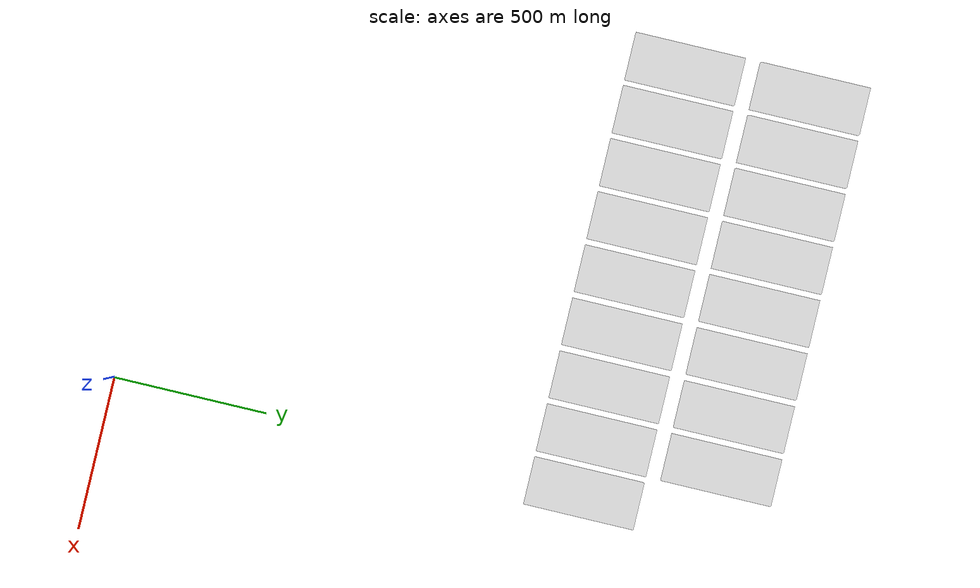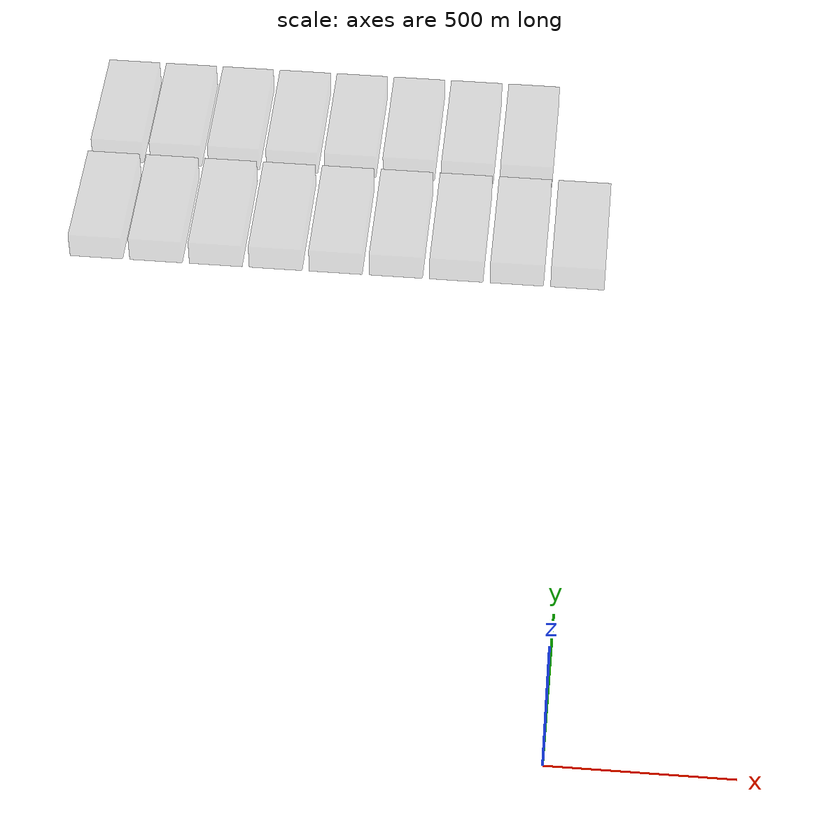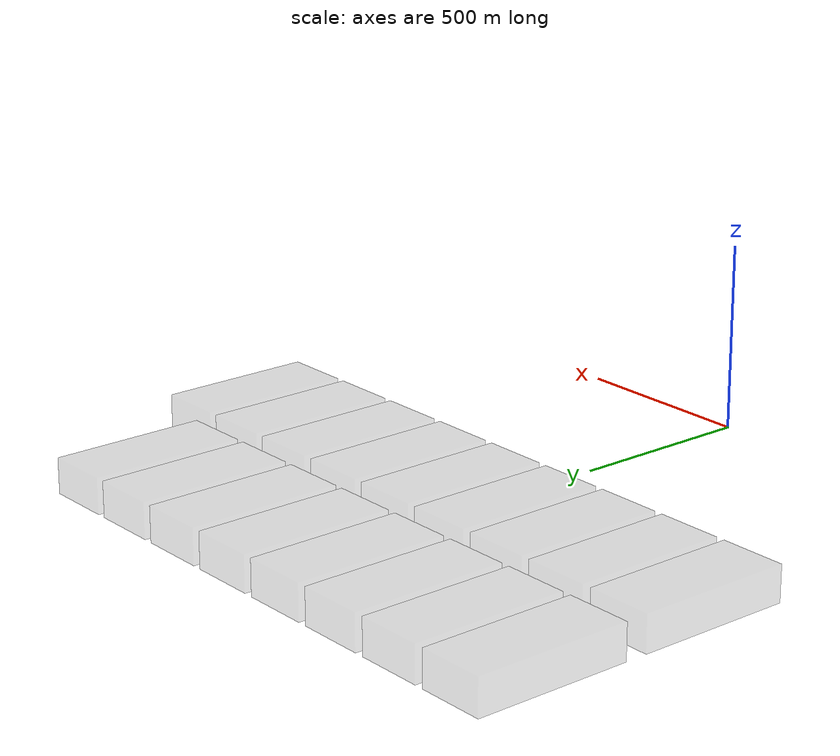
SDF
<sdf version="1.5">
 <world name="default">
  <model name="building_group1_0">
   <pose>0 1535 425 0 -0 0</pose>
   <static>1</static>
   <link name="link">
    <visual name="visual">
     <geometry><box><size>150 350 80</size></box></geometry>
     <material><ambient>0.2 0.2 0.2 0.2</ambient><diffuse>0.2 0.2 0.2 0.2</diffuse></material>
    </visual>
    <collision name="collision"><geometry><box><size>150 350 80</size></box></geometry></collision>
   </link>
  </model>
  <model name="building_group1_1">
   <pose>-170 1535 425 0 -0 0</pose>
   <static>1</static>
   <link name="link">
    <visual name="visual">
     <geometry><box><size>150 350 80</size></box></geometry>
     <material><ambient>0.2 0.2 0.2 0.2</ambient><diffuse>0.2 0.2 0.2 0.2</diffuse></material>
    </visual>
    <collision name="collision"><geometry><box><size>150 350 80</size></box></geometry></collision>
   </link>
  </model>
  <model name="building_group1_2">
   <pose>-340 1535 425 0 -0 0</pose>
   <static>1</static>
   <link name="link">
    <visual name="visual">
     <geometry><box><size>150 350 80</size></box></geometry>
     <material><ambient>0.2 0.2 0.2 0.2</ambient><diffuse>0.2 0.2 0.2 0.2</diffuse></material>
    </visual>
    <collision name="collision"><geometry><box><size>150 350 80</size></box></geometry></collision>
   </link>
  </model>
  <model name="building_group1_3">
   <pose>-510 1535 425 0 -0 0</pose>
   <static>1</static>
   <link name="link">
    <visual name="visual">
     <geometry><box><size>150 350 80</size></box></geometry>
     <material><ambient>0.2 0.2 0.2 0.2</ambient><diffuse>0.2 0.2 0.2 0.2</diffuse></material>
    </visual>
    <collision name="collision"><geometry><box><size>150 350 80</size></box></geometry></collision>
   </link>
  </model>
  <model name="building_group1_4">
   <pose>-680 1535 425 0 -0 0</pose>
   <static>1</static>
   <link name="link">
    <visual name="visual">
     <geometry><box><size>150 350 80</size></box></geometry>
     <material><ambient>0.2 0.2 0.2 0.2</ambient><diffuse>0.2 0.2 0.2 0.2</diffuse></material>
    </visual>
    <collision name="collision"><geometry><box><size>150 350 80</size></box></geometry></collision>
   </link>
  </model>
  <model name="building_group1_5">
   <pose>-850 1535 425 0 -0 0</pose>
   <static>1</static>
   <link name="link">
    <visual name="visual">
     <geometry><box><size>150 350 80</size></box></geometry>
     <material><ambient>0.2 0.2 0.2 0.2</ambient><diffuse>0.2 0.2 0.2 0.2</diffuse></material>
    </visual>
    <collision name="collision"><geometry><box><size>150 350 80</size></box></geometry></collision>
   </link>
  </model>
  <model name="building_group1_6">
   <pose>-1020 1535 425 0 -0 0</pose>
   <static>1</static>
   <link name="link">
    <visual name="visual">
     <geometry><box><size>150 350 80</size></box></geometry>
     <material><ambient>0.2 0.2 0.2 0.2</ambient><diffuse>0.2 0.2 0.2 0.2</diffuse></material>
    </visual>
    <collision name="collision"><geometry><box><size>150 350 80</size></box></geometry></collision>
   </link>
  </model>
  <model name="building_group1_7">
   <pose>-1190 1535 425 0 -0 0</pose>
   <static>1</static>
   <link name="link">
    <visual name="visual">
     <geometry><box><size>150 350 80</size></box></geometry>
     <material><ambient>0.2 0.2 0.2 0.2</ambient><diffuse>0.2 0.2 0.2 0.2</diffuse></material>
    </visual>
    <collision name="collision"><geometry><box><size>150 350 80</size></box></geometry></collision>
   </link>
  </model>
  <model name="building_group1_8">
   <pose>-1360 1535 425 0 -0 0</pose>
   <static>1</static>
   <link name="link">
    <visual name="visual">
     <geometry><box><size>150 350 80</size></box></geometry>
     <material><ambient>0.2 0.2 0.2 0.2</ambient><diffuse>0.2 0.2 0.2 0.2</diffuse></material>
    </visual>
    <collision name="collision"><geometry><box><size>150 350 80</size></box></geometry></collision>
   </link>
  </model>
  <model name="building_group1_8">
   <pose>-1360 1535 425 0 -0 0</pose>
   <static>1</static>
   <link name="link">
    <visual name="visual">
     <geometry><box><size>150 350 80</size></box></geometry>
     <material><ambient>0.2 0.2 0.2 0.2</ambient><diffuse>0.2 0.2 0.2 0.2</diffuse></material>
    </visual>
    <collision name="collision"><geometry><box><size>150 350 80</size></box></geometry></collision>
   </link>
  </model>
  <model name="building_group1_9">
   <pose>-170 1935 425 0 -0 0</pose>
   <static>1</static>
   <link name="link">
    <visual name="visual">
     <geometry><box><size>150 350 80</size></box></geometry>
     <material><ambient>0.2 0.2 0.2 0.2</ambient><diffuse>0.2 0.2 0.2 0.2</diffuse></material>
    </visual>
    <collision name="collision"><geometry><box><size>150 350 80</size></box></geometry></collision>
   </link>
  </model>
  <model name="building_group1_10">
   <pose>-340 1935 425 0 -0 0</pose>
   <static>1</static>
   <link name="link">
    <visual name="visual">
     <geometry><box><size>150 350 80</size></box></geometry>
     <material><ambient>0.2 0.2 0.2 0.2</ambient><diffuse>0.2 0.2 0.2 0.2</diffuse></material>
    </visual>
    <collision name="collision"><geometry><box><size>150 350 80</size></box></geometry></collision>
   </link>
  </model>
  <model name="building_group1_11">
   <pose>-510 1935 425 0 -0 0</pose>
   <static>1</static>
   <link name="link">
    <visual name="visual">
     <geometry><box><size>150 350 80</size></box></geometry>
     <material><ambient>0.2 0.2 0.2 0.2</ambient><diffuse>0.2 0.2 0.2 0.2</diffuse></material>
    </visual>
    <collision name="collision"><geometry><box><size>150 350 80</size></box></geometry></collision>
   </link>
  </model>
  <model name="building_group1_12">
   <pose>-680 1935 425 0 -0 0</pose>
   <static>1</static>
   <link name="link">
    <visual name="visual">
     <geometry><box><size>150 350 80</size></box></geometry>
     <material><ambient>0.2 0.2 0.2 0.2</ambient><diffuse>0.2 0.2 0.2 0.2</diffuse></material>
    </visual>
    <collision name="collision"><geometry><box><size>150 350 80</size></box></geometry></collision>
   </link>
  </model>
  <model name="building_group1_13">
   <pose>-850 1935 425 0 -0 0</pose>
   <static>1</static>
   <link name="link">
    <visual name="visual">
     <geometry><box><size>150 350 80</size></box></geometry>
     <material><ambient>0.2 0.2 0.2 0.2</ambient><diffuse>0.2 0.2 0.2 0.2</diffuse></material>
    </visual>
    <collision name="collision"><geometry><box><size>150 350 80</size></box></geometry></collision>
   </link>
  </model>
  <model name="building_group1_14">
   <pose>-1020 1935 425 0 -0 0</pose>
   <static>1</static>
   <link name="link">
    <visual name="visual">
     <geometry><box><size>150 350 80</size></box></geometry>
     <material><ambient>0.2 0.2 0.2 0.2</ambient><diffuse>0.2 0.2 0.2 0.2</diffuse></material>
    </visual>
    <collision name="collision"><geometry><box><size>150 350 80</size></box></geometry></collision>
   </link>
  </model>
  <model name="building_group1_15">
   <pose>-1190 1935 425 0 -0 0</pose>
   <static>1</static>
   <link name="link">
    <visual name="visual">
     <geometry><box><size>150 350 80</size></box></geometry>
     <material><ambient>0.2 0.2 0.2 0.2</ambient><diffuse>0.2 0.2 0.2 0.2</diffuse></material>
    </visual>
    <collision name="collision"><geometry><box><size>150 350 80</size></box></geometry></collision>
   </link>
  </model>
  <model name="building_group1_16">
   <pose>-1360 1935 425 0 -0 0</pose>
   <static>1</static>
   <link name="link">
    <visual name="visual">
     <geometry><box><size>150 350 80</size></box></geometry>
     <material><ambient>0.2 0.2 0.2 0.2</ambient><diffuse>0.2 0.2 0.2 0.2</diffuse></material>
    </visual>
    <collision name="collision"><geometry><box><size>150 350 80</size></box></geometry></collision>
   </link>
  </model>
  <model name="rotor_19">
   <pose>1 3 789.343 0 0 -0.452</pose>
   <link name="link">
    <sensor name="gps" type="gps">
     <gps>
      <position_sensing>
       <horizontal>
        <noise type="gaussian_quantized">
         <mean>0</mean>
         <stddev>4</stddev>
         <bias_mean>0</bias_mean>
         <bias_stddev>0</bias_stddev>
         <precision>0.001</precision>
        </noise>
       </horizontal>
       <vertical>
        <noise type="gaussian_quantized">
         <mean>0</mean>
         <stddev>8</stddev>
         <bias_mean>0</bias_mean>
         <bias_stddev>0</bias_stddev>
         <precision>0.01</precision>
        </noise>
       </vertical>
      </position_sensing>
      <velocity_sensing>
       <horizontal>
        <noise type="gaussian_quantized">
         <mean>0</mean>
         <stddev>4</stddev>
         <bias_mean>0</bias_mean>
         <bias_stddev>0</bias_stddev>
         <precision>0.001</precision>
        </noise>
       </horizontal>
       <vertical>
        <noise type="gaussian_quantized">
         <mean>0</mean>
         <stddev>8</stddev>
         <bias_mean>0</bias_mean>
         <bias_stddev>0</bias_stddev>
         <precision>0.01</precision>
        </noise>
       </vertical>
      </velocity_sensing>
     </gps>
     <always_on>1</always_on>
    </sensor>
    <sensor name="imu" type="imu">
     <imu>
      <angular_velocity>
       <x>
        <noise type="gaussian">
         <mean>0</mean>
         <stddev>0.0002</stddev>
         <bias_mean>7.5e-06</bias_mean>
         <bias_stddev>8e-07</bias_stddev>
        </noise>
       </x>
       <y>
        <noise type="gaussian">
         <mean>0</mean>
         <stddev>0.0002</stddev>
         <bias_mean>7.5e-06</bias_mean>
         <bias_stddev>8e-07</bias_stddev>
        </noise>
       </y>
       <z>
        <noise type="gaussian">
         <mean>0</mean>
         <stddev>0.0002</stddev>
         <bias_mean>7.5e-06</bias_mean>
         <bias_stddev>8e-07</bias_stddev>
        </noise>
       </z>
      </angular_velocity>
      <linear_acceleration>
       <x>
        <noise type="gaussian">
         <mean>0</mean>
         <stddev>0.0002</stddev>
         <bias_mean>7.5e-06</bias_mean>
         <bias_stddev>8e-07</bias_stddev>
        </noise>
       </x>
       <y>
        <noise type="gaussian">
         <mean>0</mean>
         <stddev>0.0002</stddev>
         <bias_mean>7.5e-06</bias_mean>
         <bias_stddev>8e-07</bias_stddev>
        </noise>
       </y>
       <z>
        <noise type="gaussian">
         <mean>0</mean>
         <stddev>0.0002</stddev>
         <bias_mean>7.5e-06</bias_mean>
         <bias_stddev>8e-07</bias_stddev>
        </noise>
       </z>
      </linear_acceleration>
     </imu>
     <always_on>1</always_on>
    </sensor>
    <sensor name="camera" type="logical_camera">
     <logical_camera>
      <near>0.1</near>
      <far>50</far>
      <horizontal_fov>1.4656</horizontal_fov>
      <aspect_ratio>1.778</aspect_ratio>
     </logical_camera>
     <visualize>0</visualize>
     <always_on>1</always_on>
    </sensor>
    <kinematic>1</kinematic>
    <gravity>0</gravity>
    <collision name="collision"><geometry><box><size>0.2 0.1 0.1</size></box></geometry></collision>
    <visual name="visual"><geometry><box><size>0.2 0.1 0.1</size></box></geometry></visual>
    <visual name="visual_front">
     <pose>0.07 0 0.04 0 -0 0</pose>
     <geometry><sphere><radius>0.04</radius></sphere></geometry>
     <material><script><name>Gazebo/Red</name><uri>__default__</uri></script></material>
    </visual>
    <visual name="visual_blade1">
     <pose>0 0 0.055 0 -0 0.78539</pose>
     <geometry><box><size>0.4 0.02 0.01</size></box></geometry>
     <material><script><name>Gazebo/Green</name><uri>__default__</uri></script></material>
    </visual>
    <visual name="visual_blade2">
     <pose>0 0 0.055 0 -0 2.3562</pose>
     <geometry><box><size>0.4 0.02 0.01</size></box></geometry>
     <material><script><name>Gazebo/Green</name><uri>__default__</uri></script></material>
    </visual>
    <inertial>
     <inertia><ixx>1</ixx><ixy>0</ixy><ixz>0</ixz><iyy>1</iyy><iyz>0</iyz><izz>1</izz></inertia>
     <mass>1</mass>
    </inertial>
   </link>
   <plugin name="swarm_controller_rotor_19" filename="libTeamControllerPlugin.so">
    <type>rotor</type>
    <camera>link::camera</camera>
    <gps>link::gps</gps>
    <imu>link::imu</imu>
    <address>192.168.1.20</address>
    <num_messages>1</num_messages>
    <swarm_search_area>
     <min_relative_latitude_deg>-0.01</min_relative_latitude_deg>
     <max_relative_latitude_deg>0.01</max_relative_latitude_deg>
     <min_relative_longitude_deg>-0.01</min_relative_longitude_deg>
     <max_relative_longitude_deg>0.01</max_relative_longitude_deg>
    </swarm_search_area>
    <battery>
     <capacity>3500</capacity>
     <consumption>1500</consumption>
     <consumption_factor>0.8</consumption_factor>
    </battery>
   </plugin>
  </model>
  <model name="rotor_20">
   <pose>2 3 789.311 0 0 -0.452</pose>
   <link name="link">
    <sensor name="gps" type="gps">
     <gps>
      <position_sensing>
       <horizontal>
        <noise type="gaussian_quantized">
         <mean>0</mean>
         <stddev>4</stddev>
         <bias_mean>0</bias_mean>
         <bias_stddev>0</bias_stddev>
         <precision>0.001</precision>
        </noise>
       </horizontal>
       <vertical>
        <noise type="gaussian_quantized">
         <mean>0</mean>
         <stddev>8</stddev>
         <bias_mean>0</bias_mean>
         <bias_stddev>0</bias_stddev>
         <precision>0.01</precision>
        </noise>
       </vertical>
      </position_sensing>
      <velocity_sensing>
       <horizontal>
        <noise type="gaussian_quantized">
         <mean>0</mean>
         <stddev>4</stddev>
         <bias_mean>0</bias_mean>
         <bias_stddev>0</bias_stddev>
         <precision>0.001</precision>
        </noise>
       </horizontal>
       <vertical>
        <noise type="gaussian_quantized">
         <mean>0</mean>
         <stddev>8</stddev>
         <bias_mean>0</bias_mean>
         <bias_stddev>0</bias_stddev>
         <precision>0.01</precision>
        </noise>
       </vertical>
      </velocity_sensing>
     </gps>
     <always_on>1</always_on>
    </sensor>
    <sensor name="imu" type="imu">
     <imu>
      <angular_velocity>
       <x>
        <noise type="gaussian">
         <mean>0</mean>
         <stddev>0.0002</stddev>
         <bias_mean>7.5e-06</bias_mean>
         <bias_stddev>8e-07</bias_stddev>
        </noise>
       </x>
       <y>
        <noise type="gaussian">
         <mean>0</mean>
         <stddev>0.0002</stddev>
         <bias_mean>7.5e-06</bias_mean>
         <bias_stddev>8e-07</bias_stddev>
        </noise>
       </y>
       <z>
        <noise type="gaussian">
         <mean>0</mean>
         <stddev>0.0002</stddev>
         <bias_mean>7.5e-06</bias_mean>
         <bias_stddev>8e-07</bias_stddev>
        </noise>
       </z>
      </angular_velocity>
      <linear_acceleration>
       <x>
        <noise type="gaussian">
         <mean>0</mean>
         <stddev>0.0002</stddev>
         <bias_mean>7.5e-06</bias_mean>
         <bias_stddev>8e-07</bias_stddev>
        </noise>
       </x>
       <y>
        <noise type="gaussian">
         <mean>0</mean>
         <stddev>0.0002</stddev>
         <bias_mean>7.5e-06</bias_mean>
         <bias_stddev>8e-07</bias_stddev>
        </noise>
       </y>
       <z>
        <noise type="gaussian">
         <mean>0</mean>
         <stddev>0.0002</stddev>
         <bias_mean>7.5e-06</bias_mean>
         <bias_stddev>8e-07</bias_stddev>
        </noise>
       </z>
      </linear_acceleration>
     </imu>
     <always_on>1</always_on>
    </sensor>
    <sensor name="camera" type="logical_camera">
     <logical_camera>
      <near>0.1</near>
      <far>50</far>
      <horizontal_fov>1.4656</horizontal_fov>
      <aspect_ratio>1.778</aspect_ratio>
     </logical_camera>
     <visualize>0</visualize>
     <always_on>1</always_on>
    </sensor>
    <kinematic>1</kinematic>
    <gravity>0</gravity>
    <collision name="collision"><geometry><box><size>0.2 0.1 0.1</size></box></geometry></collision>
    <visual name="visual"><geometry><box><size>0.2 0.1 0.1</size></box></geometry></visual>
    <visual name="visual_front">
     <pose>0.07 0 0.04 0 -0 0</pose>
     <geometry><sphere><radius>0.04</radius></sphere></geometry>
     <material><script><name>Gazebo/Red</name><uri>__default__</uri></script></material>
    </visual>
    <visual name="visual_blade1">
     <pose>0 0 0.055 0 -0 0.78539</pose>
     <geometry><box><size>0.4 0.02 0.01</size></box></geometry>
     <material><script><name>Gazebo/Green</name><uri>__default__</uri></script></material>
    </visual>
    <visual name="visual_blade2">
     <pose>0 0 0.055 0 -0 2.3562</pose>
     <geometry><box><size>0.4 0.02 0.01</size></box></geometry>
     <material><script><name>Gazebo/Green</name><uri>__default__</uri></script></material>
    </visual>
    <inertial>
     <inertia><ixx>1</ixx><ixy>0</ixy><ixz>0</ixz><iyy>1</iyy><iyz>0</iyz><izz>1</izz></inertia>
     <mass>1</mass>
    </inertial>
   </link>
   <plugin name="swarm_controller_rotor_20" filename="libTeamControllerPlugin.so">
    <type>rotor</type>
    <camera>link::camera</camera>
    <gps>link::gps</gps>
    <imu>link::imu</imu>
    <address>192.168.1.21</address>
    <num_messages>1</num_messages>
    <swarm_search_area>
     <min_relative_latitude_deg>-0.01</min_relative_latitude_deg>
     <max_relative_latitude_deg>0.01</max_relative_latitude_deg>
     <min_relative_longitude_deg>-0.01</min_relative_longitude_deg>
     <max_relative_longitude_deg>0.01</max_relative_longitude_deg>
    </swarm_search_area>
    <battery>
     <capacity>3500</capacity>
     <consumption>1500</consumption>
     <consumption_factor>0.8</consumption_factor>
    </battery>
   </plugin>
  </model>
  <model name="rotor_24">
   <pose>0 4 789.187 0 0 -0.452</pose>
   <link name="link">
    <sensor name="gps" type="gps">
     <gps>
      <position_sensing>
       <horizontal>
        <noise type="gaussian_quantized">
         <mean>0</mean>
         <stddev>4</stddev>
         <bias_mean>0</bias_mean>
         <bias_stddev>0</bias_stddev>
         <precision>0.001</precision>
        </noise>
       </horizontal>
       <vertical>
        <noise type="gaussian_quantized">
         <mean>0</mean>
         <stddev>8</stddev>
         <bias_mean>0</bias_mean>
         <bias_stddev>0</bias_stddev>
         <precision>0.01</precision>
        </noise>
       </vertical>
      </position_sensing>
      <velocity_sensing>
       <horizontal>
        <noise type="gaussian_quantized">
         <mean>0</mean>
         <stddev>4</stddev>
         <bias_mean>0</bias_mean>
         <bias_stddev>0</bias_stddev>
         <precision>0.001</precision>
        </noise>
       </horizontal>
       <vertical>
        <noise type="gaussian_quantized">
         <mean>0</mean>
         <stddev>8</stddev>
         <bias_mean>0</bias_mean>
         <bias_stddev>0</bias_stddev>
         <precision>0.01</precision>
        </noise>
       </vertical>
      </velocity_sensing>
     </gps>
     <always_on>1</always_on>
    </sensor>
    <sensor name="imu" type="imu">
     <imu>
      <angular_velocity>
       <x>
        <noise type="gaussian">
         <mean>0</mean>
         <stddev>0.0002</stddev>
         <bias_mean>7.5e-06</bias_mean>
         <bias_stddev>8e-07</bias_stddev>
        </noise>
       </x>
       <y>
        <noise type="gaussian">
         <mean>0</mean>
         <stddev>0.0002</stddev>
         <bias_mean>7.5e-06</bias_mean>
         <bias_stddev>8e-07</bias_stddev>
        </noise>
       </y>
       <z>
        <noise type="gaussian">
         <mean>0</mean>
         <stddev>0.0002</stddev>
         <bias_mean>7.5e-06</bias_mean>
         <bias_stddev>8e-07</bias_stddev>
        </noise>
       </z>
      </angular_velocity>
      <linear_acceleration>
       <x>
        <noise type="gaussian">
         <mean>0</mean>
         <stddev>0.0002</stddev>
         <bias_mean>7.5e-06</bias_mean>
         <bias_stddev>8e-07</bias_stddev>
        </noise>
       </x>
       <y>
        <noise type="gaussian">
         <mean>0</mean>
         <stddev>0.0002</stddev>
         <bias_mean>7.5e-06</bias_mean>
         <bias_stddev>8e-07</bias_stddev>
        </noise>
       </y>
       <z>
        <noise type="gaussian">
         <mean>0</mean>
         <stddev>0.0002</stddev>
         <bias_mean>7.5e-06</bias_mean>
         <bias_stddev>8e-07</bias_stddev>
        </noise>
       </z>
      </linear_acceleration>
     </imu>
     <always_on>1</always_on>
    </sensor>
    <sensor name="camera" type="logical_camera">
     <logical_camera>
      <near>0.1</near>
      <far>50</far>
      <horizontal_fov>1.4656</horizontal_fov>
      <aspect_ratio>1.778</aspect_ratio>
     </logical_camera>
     <visualize>0</visualize>
     <always_on>1</always_on>
    </sensor>
    <kinematic>1</kinematic>
    <gravity>0</gravity>
    <collision name="collision"><geometry><box><size>0.2 0.1 0.1</size></box></geometry></collision>
    <visual name="visual"><geometry><box><size>0.2 0.1 0.1</size></box></geometry></visual>
    <visual name="visual_front">
     <pose>0.07 0 0.04 0 -0 0</pose>
     <geometry><sphere><radius>0.04</radius></sphere></geometry>
     <material><script><name>Gazebo/Red</name><uri>__default__</uri></script></material>
    </visual>
    <visual name="visual_blade1">
     <pose>0 0 0.055 0 -0 0.78539</pose>
     <geometry><box><size>0.4 0.02 0.01</size></box></geometry>
     <material><script><name>Gazebo/Green</name><uri>__default__</uri></script></material>
    </visual>
    <visual name="visual_blade2">
     <pose>0 0 0.055 0 -0 2.3562</pose>
     <geometry><box><size>0.4 0.02 0.01</size></box></geometry>
     <material><script><name>Gazebo/Green</name><uri>__default__</uri></script></material>
    </visual>
    <inertial>
     <inertia><ixx>1</ixx><ixy>0</ixy><ixz>0</ixz><iyy>1</iyy><iyz>0</iyz><izz>1</izz></inertia>
     <mass>1</mass>
    </inertial>
   </link>
   <plugin name="swarm_controller_rotor_24" filename="libTeamControllerPlugin.so">
    <type>rotor</type>
    <camera>link::camera</camera>
    <gps>link::gps</gps>
    <imu>link::imu</imu>
    <address>192.168.1.25</address>
    <num_messages>1</num_messages>
    <swarm_search_area>
     <min_relative_latitude_deg>-0.01</min_relative_latitude_deg>
     <max_relative_latitude_deg>0.01</max_relative_latitude_deg>
     <min_relative_longitude_deg>-0.01</min_relative_longitude_deg>
     <max_relative_longitude_deg>0.01</max_relative_longitude_deg>
    </swarm_search_area>
    <battery>
     <capacity>3500</capacity>
     <consumption>1500</consumption>
     <consumption_factor>0.8</consumption_factor>
    </battery>
   </plugin>
  </model>
  <model name="rotor_25">
   <pose>1 4 789.155 0 0 -0.452</pose>
   <link name="link">
    <sensor name="gps" type="gps">
     <gps>
      <position_sensing>
       <horizontal>
        <noise type="gaussian_quantized">
         <mean>0</mean>
         <stddev>4</stddev>
         <bias_mean>0</bias_mean>
         <bias_stddev>0</bias_stddev>
         <precision>0.001</precision>
        </noise>
       </horizontal>
       <vertical>
        <noise type="gaussian_quantized">
         <mean>0</mean>
         <stddev>8</stddev>
         <bias_mean>0</bias_mean>
         <bias_stddev>0</bias_stddev>
         <precision>0.01</precision>
        </noise>
       </vertical>
      </position_sensing>
      <velocity_sensing>
       <horizontal>
        <noise type="gaussian_quantized">
         <mean>0</mean>
         <stddev>4</stddev>
         <bias_mean>0</bias_mean>
         <bias_stddev>0</bias_stddev>
         <precision>0.001</precision>
        </noise>
       </horizontal>
       <vertical>
        <noise type="gaussian_quantized">
         <mean>0</mean>
         <stddev>8</stddev>
         <bias_mean>0</bias_mean>
         <bias_stddev>0</bias_stddev>
         <precision>0.01</precision>
        </noise>
       </vertical>
      </velocity_sensing>
     </gps>
     <always_on>1</always_on>
    </sensor>
    <sensor name="imu" type="imu">
     <imu>
      <angular_velocity>
       <x>
        <noise type="gaussian">
         <mean>0</mean>
         <stddev>0.0002</stddev>
         <bias_mean>7.5e-06</bias_mean>
         <bias_stddev>8e-07</bias_stddev>
        </noise>
       </x>
       <y>
        <noise type="gaussian">
         <mean>0</mean>
         <stddev>0.0002</stddev>
         <bias_mean>7.5e-06</bias_mean>
         <bias_stddev>8e-07</bias_stddev>
        </noise>
       </y>
       <z>
        <noise type="gaussian">
         <mean>0</mean>
         <stddev>0.0002</stddev>
         <bias_mean>7.5e-06</bias_mean>
         <bias_stddev>8e-07</bias_stddev>
        </noise>
       </z>
      </angular_velocity>
      <linear_acceleration>
       <x>
        <noise type="gaussian">
         <mean>0</mean>
         <stddev>0.0002</stddev>
         <bias_mean>7.5e-06</bias_mean>
         <bias_stddev>8e-07</bias_stddev>
        </noise>
       </x>
       <y>
        <noise type="gaussian">
         <mean>0</mean>
         <stddev>0.0002</stddev>
         <bias_mean>7.5e-06</bias_mean>
         <bias_stddev>8e-07</bias_stddev>
        </noise>
       </y>
       <z>
        <noise type="gaussian">
         <mean>0</mean>
         <stddev>0.0002</stddev>
         <bias_mean>7.5e-06</bias_mean>
         <bias_stddev>8e-07</bias_stddev>
        </noise>
       </z>
      </linear_acceleration>
     </imu>
     <always_on>1</always_on>
    </sensor>
    <sensor name="camera" type="logical_camera">
     <logical_camera>
      <near>0.1</near>
      <far>50</far>
      <horizontal_fov>1.4656</horizontal_fov>
      <aspect_ratio>1.778</aspect_ratio>
     </logical_camera>
     <visualize>0</visualize>
     <always_on>1</always_on>
    </sensor>
    <kinematic>1</kinematic>
    <gravity>0</gravity>
    <collision name="collision"><geometry><box><size>0.2 0.1 0.1</size></box></geometry></collision>
    <visual name="visual"><geometry><box><size>0.2 0.1 0.1</size></box></geometry></visual>
    <visual name="visual_front">
     <pose>0.07 0 0.04 0 -0 0</pose>
     <geometry><sphere><radius>0.04</radius></sphere></geometry>
     <material><script><name>Gazebo/Red</name><uri>__default__</uri></script></material>
    </visual>
    <visual name="visual_blade1">
     <pose>0 0 0.055 0 -0 0.78539</pose>
     <geometry><box><size>0.4 0.02 0.01</size></box></geometry>
     <material><script><name>Gazebo/Green</name><uri>__default__</uri></script></material>
    </visual>
    <visual name="visual_blade2">
     <pose>0 0 0.055 0 -0 2.3562</pose>
     <geometry><box><size>0.4 0.02 0.01</size></box></geometry>
     <material><script><name>Gazebo/Green</name><uri>__default__</uri></script></material>
    </visual>
    <inertial>
     <inertia><ixx>1</ixx><ixy>0</ixy><ixz>0</ixz><iyy>1</iyy><iyz>0</iyz><izz>1</izz></inertia>
     <mass>1</mass>
    </inertial>
   </link>
   <plugin name="swarm_controller_rotor_25" filename="libTeamControllerPlugin.so">
    <type>rotor</type>
    <camera>link::camera</camera>
    <gps>link::gps</gps>
    <imu>link::imu</imu>
    <address>192.168.1.26</address>
    <num_messages>1</num_messages>
    <swarm_search_area>
     <min_relative_latitude_deg>-0.01</min_relative_latitude_deg>
     <max_relative_latitude_deg>0.01</max_relative_latitude_deg>
     <min_relative_longitude_deg>-0.01</min_relative_longitude_deg>
     <max_relative_longitude_deg>0.01</max_relative_longitude_deg>
    </swarm_search_area>
    <battery>
     <capacity>3500</capacity>
     <consumption>1500</consumption>
     <consumption_factor>0.8</consumption_factor>
    </battery>
   </plugin>
  </model>
  <model name="rotor_26">
   <pose>2 4 789.124 0 0 -0.452</pose>
   <link name="link">
    <sensor name="gps" type="gps">
     <gps>
      <position_sensing>
       <horizontal>
        <noise type="gaussian_quantized">
         <mean>0</mean>
         <stddev>4</stddev>
         <bias_mean>0</bias_mean>
         <bias_stddev>0</bias_stddev>
         <precision>0.001</precision>
        </noise>
       </horizontal>
       <vertical>
        <noise type="gaussian_quantized">
         <mean>0</mean>
         <stddev>8</stddev>
         <bias_mean>0</bias_mean>
         <bias_stddev>0</bias_stddev>
         <precision>0.01</precision>
        </noise>
       </vertical>
      </position_sensing>
      <velocity_sensing>
       <horizontal>
        <noise type="gaussian_quantized">
         <mean>0</mean>
         <stddev>4</stddev>
         <bias_mean>0</bias_mean>
         <bias_stddev>0</bias_stddev>
         <precision>0.001</precision>
        </noise>
       </horizontal>
       <vertical>
        <noise type="gaussian_quantized">
         <mean>0</mean>
         <stddev>8</stddev>
         <bias_mean>0</bias_mean>
         <bias_stddev>0</bias_stddev>
         <precision>0.01</precision>
        </noise>
       </vertical>
      </velocity_sensing>
     </gps>
     <always_on>1</always_on>
    </sensor>
    <sensor name="imu" type="imu">
     <imu>
      <angular_velocity>
       <x>
        <noise type="gaussian">
         <mean>0</mean>
         <stddev>0.0002</stddev>
         <bias_mean>7.5e-06</bias_mean>
         <bias_stddev>8e-07</bias_stddev>
        </noise>
       </x>
       <y>
        <noise type="gaussian">
         <mean>0</mean>
         <stddev>0.0002</stddev>
         <bias_mean>7.5e-06</bias_mean>
         <bias_stddev>8e-07</bias_stddev>
        </noise>
       </y>
       <z>
        <noise type="gaussian">
         <mean>0</mean>
         <stddev>0.0002</stddev>
         <bias_mean>7.5e-06</bias_mean>
         <bias_stddev>8e-07</bias_stddev>
        </noise>
       </z>
      </angular_velocity>
      <linear_acceleration>
       <x>
        <noise type="gaussian">
         <mean>0</mean>
         <stddev>0.0002</stddev>
         <bias_mean>7.5e-06</bias_mean>
         <bias_stddev>8e-07</bias_stddev>
        </noise>
       </x>
       <y>
        <noise type="gaussian">
         <mean>0</mean>
         <stddev>0.0002</stddev>
         <bias_mean>7.5e-06</bias_mean>
         <bias_stddev>8e-07</bias_stddev>
        </noise>
       </y>
       <z>
        <noise type="gaussian">
         <mean>0</mean>
         <stddev>0.0002</stddev>
         <bias_mean>7.5e-06</bias_mean>
         <bias_stddev>8e-07</bias_stddev>
        </noise>
       </z>
      </linear_acceleration>
     </imu>
     <always_on>1</always_on>
    </sensor>
    <sensor name="camera" type="logical_camera">
     <logical_camera>
      <near>0.1</near>
      <far>50</far>
      <horizontal_fov>1.4656</horizontal_fov>
      <aspect_ratio>1.778</aspect_ratio>
     </logical_camera>
     <visualize>0</visualize>
     <always_on>1</always_on>
    </sensor>
    <kinematic>1</kinematic>
    <gravity>0</gravity>
    <collision name="collision"><geometry><box><size>0.2 0.1 0.1</size></box></geometry></collision>
    <visual name="visual"><geometry><box><size>0.2 0.1 0.1</size></box></geometry></visual>
    <visual name="visual_front">
     <pose>0.07 0 0.04 0 -0 0</pose>
     <geometry><sphere><radius>0.04</radius></sphere></geometry>
     <material><script><name>Gazebo/Red</name><uri>__default__</uri></script></material>
    </visual>
    <visual name="visual_blade1">
     <pose>0 0 0.055 0 -0 0.78539</pose>
     <geometry><box><size>0.4 0.02 0.01</size></box></geometry>
     <material><script><name>Gazebo/Green</name><uri>__default__</uri></script></material>
    </visual>
    <visual name="visual_blade2">
     <pose>0 0 0.055 0 -0 2.3562</pose>
     <geometry><box><size>0.4 0.02 0.01</size></box></geometry>
     <material><script><name>Gazebo/Green</name><uri>__default__</uri></script></material>
    </visual>
    <inertial>
     <inertia><ixx>1</ixx><ixy>0</ixy><ixz>0</ixz><iyy>1</iyy><iyz>0</iyz><izz>1</izz></inertia>
     <mass>1</mass>
    </inertial>
   </link>
   <plugin name="swarm_controller_rotor_26" filename="libTeamControllerPlugin.so">
    <type>rotor</type>
    <camera>link::camera</camera>
    <gps>link::gps</gps>
    <imu>link::imu</imu>
    <address>192.168.1.27</address>
    <num_messages>1</num_messages>
    <swarm_search_area>
     <min_relative_latitude_deg>-0.01</min_relative_latitude_deg>
     <max_relative_latitude_deg>0.01</max_relative_latitude_deg>
     <min_relative_longitude_deg>-0.01</min_relative_longitude_deg>
     <max_relative_longitude_deg>0.01</max_relative_longitude_deg>
    </swarm_search_area>
    <battery>
     <capacity>3500</capacity>
     <consumption>1500</consumption>
     <consumption_factor>0.8</consumption_factor>
    </battery>
   </plugin>
  </model>
  <model name="rotor_30">
   <pose>0 5 788.999 0 0 -0.452</pose>
   <link name="link">
    <sensor name="gps" type="gps">
     <gps>
      <position_sensing>
       <horizontal>
        <noise type="gaussian_quantized">
         <mean>0</mean>
         <stddev>4</stddev>
         <bias_mean>0</bias_mean>
         <bias_stddev>0</bias_stddev>
         <precision>0.001</precision>
        </noise>
       </horizontal>
       <vertical>
        <noise type="gaussian_quantized">
         <mean>0</mean>
         <stddev>8</stddev>
         <bias_mean>0</bias_mean>
         <bias_stddev>0</bias_stddev>
         <precision>0.01</precision>
        </noise>
       </vertical>
      </position_sensing>
      <velocity_sensing>
       <horizontal>
        <noise type="gaussian_quantized">
         <mean>0</mean>
         <stddev>4</stddev>
         <bias_mean>0</bias_mean>
         <bias_stddev>0</bias_stddev>
         <precision>0.001</precision>
        </noise>
       </horizontal>
       <vertical>
        <noise type="gaussian_quantized">
         <mean>0</mean>
         <stddev>8</stddev>
         <bias_mean>0</bias_mean>
         <bias_stddev>0</bias_stddev>
         <precision>0.01</precision>
        </noise>
       </vertical>
      </velocity_sensing>
     </gps>
     <always_on>1</always_on>
    </sensor>
    <sensor name="imu" type="imu">
     <imu>
      <angular_velocity>
       <x>
        <noise type="gaussian">
         <mean>0</mean>
         <stddev>0.0002</stddev>
         <bias_mean>7.5e-06</bias_mean>
         <bias_stddev>8e-07</bias_stddev>
        </noise>
       </x>
       <y>
        <noise type="gaussian">
         <mean>0</mean>
         <stddev>0.0002</stddev>
         <bias_mean>7.5e-06</bias_mean>
         <bias_stddev>8e-07</bias_stddev>
        </noise>
       </y>
       <z>
        <noise type="gaussian">
         <mean>0</mean>
         <stddev>0.0002</stddev>
         <bias_mean>7.5e-06</bias_mean>
         <bias_stddev>8e-07</bias_stddev>
        </noise>
       </z>
      </angular_velocity>
      <linear_acceleration>
       <x>
        <noise type="gaussian">
         <mean>0</mean>
         <stddev>0.0002</stddev>
         <bias_mean>7.5e-06</bias_mean>
         <bias_stddev>8e-07</bias_stddev>
        </noise>
       </x>
       <y>
        <noise type="gaussian">
         <mean>0</mean>
         <stddev>0.0002</stddev>
         <bias_mean>7.5e-06</bias_mean>
         <bias_stddev>8e-07</bias_stddev>
        </noise>
       </y>
       <z>
        <noise type="gaussian">
         <mean>0</mean>
         <stddev>0.0002</stddev>
         <bias_mean>7.5e-06</bias_mean>
         <bias_stddev>8e-07</bias_stddev>
        </noise>
       </z>
      </linear_acceleration>
     </imu>
     <always_on>1</always_on>
    </sensor>
    <sensor name="camera" type="logical_camera">
     <logical_camera>
      <near>0.1</near>
      <far>50</far>
      <horizontal_fov>1.4656</horizontal_fov>
      <aspect_ratio>1.778</aspect_ratio>
     </logical_camera>
     <visualize>0</visualize>
     <always_on>1</always_on>
    </sensor>
    <kinematic>1</kinematic>
    <gravity>0</gravity>
    <collision name="collision"><geometry><box><size>0.2 0.1 0.1</size></box></geometry></collision>
    <visual name="visual"><geometry><box><size>0.2 0.1 0.1</size></box></geometry></visual>
    <visual name="visual_front">
     <pose>0.07 0 0.04 0 -0 0</pose>
     <geometry><sphere><radius>0.04</radius></sphere></geometry>
     <material><script><name>Gazebo/Red</name><uri>__default__</uri></script></material>
    </visual>
    <visual name="visual_blade1">
     <pose>0 0 0.055 0 -0 0.78539</pose>
     <geometry><box><size>0.4 0.02 0.01</size></box></geometry>
     <material><script><name>Gazebo/Green</name><uri>__default__</uri></script></material>
    </visual>
    <visual name="visual_blade2">
     <pose>0 0 0.055 0 -0 2.3562</pose>
     <geometry><box><size>0.4 0.02 0.01</size></box></geometry>
     <material><script><name>Gazebo/Green</name><uri>__default__</uri></script></material>
    </visual>
    <inertial>
     <inertia><ixx>1</ixx><ixy>0</ixy><ixz>0</ixz><iyy>1</iyy><iyz>0</iyz><izz>1</izz></inertia>
     <mass>1</mass>
    </inertial>
   </link>
   <plugin name="swarm_controller_rotor_30" filename="libTeamControllerPlugin.so">
    <type>rotor</type>
    <camera>link::camera</camera>
    <gps>link::gps</gps>
    <imu>link::imu</imu>
    <address>192.168.1.31</address>
    <num_messages>1</num_messages>
    <swarm_search_area>
     <min_relative_latitude_deg>-0.01</min_relative_latitude_deg>
     <max_relative_latitude_deg>0.01</max_relative_latitude_deg>
     <min_relative_longitude_deg>-0.01</min_relative_longitude_deg>
     <max_relative_longitude_deg>0.01</max_relative_longitude_deg>
    </swarm_search_area>
    <battery>
     <capacity>3500</capacity>
     <consumption>1500</consumption>
     <consumption_factor>0.8</consumption_factor>
    </battery>
   </plugin>
  </model>
  <model name="rotor_31">
   <pose>1 5 788.968 0 0 -0.452</pose>
   <link name="link">
    <sensor name="gps" type="gps">
     <gps>
      <position_sensing>
       <horizontal>
        <noise type="gaussian_quantized">
         <mean>0</mean>
         <stddev>4</stddev>
         <bias_mean>0</bias_mean>
         <bias_stddev>0</bias_stddev>
         <precision>0.001</precision>
        </noise>
       </horizontal>
       <vertical>
        <noise type="gaussian_quantized">
         <mean>0</mean>
         <stddev>8</stddev>
         <bias_mean>0</bias_mean>
         <bias_stddev>0</bias_stddev>
         <precision>0.01</precision>
        </noise>
       </vertical>
      </position_sensing>
      <velocity_sensing>
       <horizontal>
        <noise type="gaussian_quantized">
         <mean>0</mean>
         <stddev>4</stddev>
         <bias_mean>0</bias_mean>
         <bias_stddev>0</bias_stddev>
         <precision>0.001</precision>
        </noise>
       </horizontal>
       <vertical>
        <noise type="gaussian_quantized">
         <mean>0</mean>
         <stddev>8</stddev>
         <bias_mean>0</bias_mean>
         <bias_stddev>0</bias_stddev>
         <precision>0.01</precision>
        </noise>
       </vertical>
      </velocity_sensing>
     </gps>
     <always_on>1</always_on>
    </sensor>
    <sensor name="imu" type="imu">
     <imu>
      <angular_velocity>
       <x>
        <noise type="gaussian">
         <mean>0</mean>
         <stddev>0.0002</stddev>
         <bias_mean>7.5e-06</bias_mean>
         <bias_stddev>8e-07</bias_stddev>
        </noise>
       </x>
       <y>
        <noise type="gaussian">
         <mean>0</mean>
         <stddev>0.0002</stddev>
         <bias_mean>7.5e-06</bias_mean>
         <bias_stddev>8e-07</bias_stddev>
        </noise>
       </y>
       <z>
        <noise type="gaussian">
         <mean>0</mean>
         <stddev>0.0002</stddev>
         <bias_mean>7.5e-06</bias_mean>
         <bias_stddev>8e-07</bias_stddev>
        </noise>
       </z>
      </angular_velocity>
      <linear_acceleration>
       <x>
        <noise type="gaussian">
         <mean>0</mean>
         <stddev>0.0002</stddev>
         <bias_mean>7.5e-06</bias_mean>
         <bias_stddev>8e-07</bias_stddev>
        </noise>
       </x>
       <y>
        <noise type="gaussian">
         <mean>0</mean>
         <stddev>0.0002</stddev>
         <bias_mean>7.5e-06</bias_mean>
         <bias_stddev>8e-07</bias_stddev>
        </noise>
       </y>
       <z>
        <noise type="gaussian">
         <mean>0</mean>
         <stddev>0.0002</stddev>
         <bias_mean>7.5e-06</bias_mean>
         <bias_stddev>8e-07</bias_stddev>
        </noise>
       </z>
      </linear_acceleration>
     </imu>
     <always_on>1</always_on>
    </sensor>
    <sensor name="camera" type="logical_camera">
     <logical_camera>
      <near>0.1</near>
      <far>50</far>
      <horizontal_fov>1.4656</horizontal_fov>
      <aspect_ratio>1.778</aspect_ratio>
     </logical_camera>
     <visualize>0</visualize>
     <always_on>1</always_on>
    </sensor>
    <kinematic>1</kinematic>
    <gravity>0</gravity>
    <collision name="collision"><geometry><box><size>0.2 0.1 0.1</size></box></geometry></collision>
    <visual name="visual"><geometry><box><size>0.2 0.1 0.1</size></box></geometry></visual>
    <visual name="visual_front">
     <pose>0.07 0 0.04 0 -0 0</pose>
     <geometry><sphere><radius>0.04</radius></sphere></geometry>
     <material><script><name>Gazebo/Red</name><uri>__default__</uri></script></material>
    </visual>
    <visual name="visual_blade1">
     <pose>0 0 0.055 0 -0 0.78539</pose>
     <geometry><box><size>0.4 0.02 0.01</size></box></geometry>
     <material><script><name>Gazebo/Green</name><uri>__default__</uri></script></material>
    </visual>
    <visual name="visual_blade2">
     <pose>0 0 0.055 0 -0 2.3562</pose>
     <geometry><box><size>0.4 0.02 0.01</size></box></geometry>
     <material><script><name>Gazebo/Green</name><uri>__default__</uri></script></material>
    </visual>
    <inertial>
     <inertia><ixx>1</ixx><ixy>0</ixy><ixz>0</ixz><iyy>1</iyy><iyz>0</iyz><izz>1</izz></inertia>
     <mass>1</mass>
    </inertial>
   </link>
   <plugin name="swarm_controller_rotor_31" filename="libTeamControllerPlugin.so">
    <type>rotor</type>
    <camera>link::camera</camera>
    <gps>link::gps</gps>
    <imu>link::imu</imu>
    <address>192.168.1.32</address>
    <num_messages>1</num_messages>
    <swarm_search_area>
     <min_relative_latitude_deg>-0.01</min_relative_latitude_deg>
     <max_relative_latitude_deg>0.01</max_relative_latitude_deg>
     <min_relative_longitude_deg>-0.01</min_relative_longitude_deg>
     <max_relative_longitude_deg>0.01</max_relative_longitude_deg>
    </swarm_search_area>
    <battery>
     <capacity>3500</capacity>
     <consumption>1500</consumption>
     <consumption_factor>0.8</consumption_factor>
    </battery>
   </plugin>
  </model>
  <model name="rotor_32">
   <pose>2 5 788.937 0 0 -0.452</pose>
   <link name="link">
    <sensor name="gps" type="gps">
     <gps>
      <position_sensing>
       <horizontal>
        <noise type="gaussian_quantized">
         <mean>0</mean>
         <stddev>4</stddev>
         <bias_mean>0</bias_mean>
         <bias_stddev>0</bias_stddev>
         <precision>0.001</precision>
        </noise>
       </horizontal>
       <vertical>
        <noise type="gaussian_quantized">
         <mean>0</mean>
         <stddev>8</stddev>
         <bias_mean>0</bias_mean>
         <bias_stddev>0</bias_stddev>
         <precision>0.01</precision>
        </noise>
       </vertical>
      </position_sensing>
      <velocity_sensing>
       <horizontal>
        <noise type="gaussian_quantized">
         <mean>0</mean>
         <stddev>4</stddev>
         <bias_mean>0</bias_mean>
         <bias_stddev>0</bias_stddev>
         <precision>0.001</precision>
        </noise>
       </horizontal>
       <vertical>
        <noise type="gaussian_quantized">
         <mean>0</mean>
         <stddev>8</stddev>
         <bias_mean>0</bias_mean>
         <bias_stddev>0</bias_stddev>
         <precision>0.01</precision>
        </noise>
       </vertical>
      </velocity_sensing>
     </gps>
     <always_on>1</always_on>
    </sensor>
    <sensor name="imu" type="imu">
     <imu>
      <angular_velocity>
       <x>
        <noise type="gaussian">
         <mean>0</mean>
         <stddev>0.0002</stddev>
         <bias_mean>7.5e-06</bias_mean>
         <bias_stddev>8e-07</bias_stddev>
        </noise>
       </x>
       <y>
        <noise type="gaussian">
         <mean>0</mean>
         <stddev>0.0002</stddev>
         <bias_mean>7.5e-06</bias_mean>
         <bias_stddev>8e-07</bias_stddev>
        </noise>
       </y>
       <z>
        <noise type="gaussian">
         <mean>0</mean>
         <stddev>0.0002</stddev>
         <bias_mean>7.5e-06</bias_mean>
         <bias_stddev>8e-07</bias_stddev>
        </noise>
       </z>
      </angular_velocity>
      <linear_acceleration>
       <x>
        <noise type="gaussian">
         <mean>0</mean>
         <stddev>0.0002</stddev>
         <bias_mean>7.5e-06</bias_mean>
         <bias_stddev>8e-07</bias_stddev>
        </noise>
       </x>
       <y>
        <noise type="gaussian">
         <mean>0</mean>
         <stddev>0.0002</stddev>
         <bias_mean>7.5e-06</bias_mean>
         <bias_stddev>8e-07</bias_stddev>
        </noise>
       </y>
       <z>
        <noise type="gaussian">
         <mean>0</mean>
         <stddev>0.0002</stddev>
         <bias_mean>7.5e-06</bias_mean>
         <bias_stddev>8e-07</bias_stddev>
        </noise>
       </z>
      </linear_acceleration>
     </imu>
     <always_on>1</always_on>
    </sensor>
    <sensor name="camera" type="logical_camera">
     <logical_camera>
      <near>0.1</near>
      <far>50</far>
      <horizontal_fov>1.4656</horizontal_fov>
      <aspect_ratio>1.778</aspect_ratio>
     </logical_camera>
     <visualize>0</visualize>
     <always_on>1</always_on>
    </sensor>
    <kinematic>1</kinematic>
    <gravity>0</gravity>
    <collision name="collision"><geometry><box><size>0.2 0.1 0.1</size></box></geometry></collision>
    <visual name="visual"><geometry><box><size>0.2 0.1 0.1</size></box></geometry></visual>
    <visual name="visual_front">
     <pose>0.07 0 0.04 0 -0 0</pose>
     <geometry><sphere><radius>0.04</radius></sphere></geometry>
     <material><script><name>Gazebo/Red</name><uri>__default__</uri></script></material>
    </visual>
    <visual name="visual_blade1">
     <pose>0 0 0.055 0 -0 0.78539</pose>
     <geometry><box><size>0.4 0.02 0.01</size></box></geometry>
     <material><script><name>Gazebo/Green</name><uri>__default__</uri></script></material>
    </visual>
    <visual name="visual_blade2">
     <pose>0 0 0.055 0 -0 2.3562</pose>
     <geometry><box><size>0.4 0.02 0.01</size></box></geometry>
     <material><script><name>Gazebo/Green</name><uri>__default__</uri></script></material>
    </visual>
    <inertial>
     <inertia><ixx>1</ixx><ixy>0</ixy><ixz>0</ixz><iyy>1</iyy><iyz>0</iyz><izz>1</izz></inertia>
     <mass>1</mass>
    </inertial>
   </link>
   <plugin name="swarm_controller_rotor_32" filename="libTeamControllerPlugin.so">
    <type>rotor</type>
    <camera>link::camera</camera>
    <gps>link::gps</gps>
    <imu>link::imu</imu>
    <address>192.168.1.33</address>
    <num_messages>1</num_messages>
    <swarm_search_area>
     <min_relative_latitude_deg>-0.01</min_relative_latitude_deg>
     <max_relative_latitude_deg>0.01</max_relative_latitude_deg>
     <min_relative_longitude_deg>-0.01</min_relative_longitude_deg>
     <max_relative_longitude_deg>0.01</max_relative_longitude_deg>
    </swarm_search_area>
    <battery>
     <capacity>3500</capacity>
     <consumption>1500</consumption>
     <consumption_factor>0.8</consumption_factor>
    </battery>
   </plugin>
  </model>
 </world>
</sdf>
